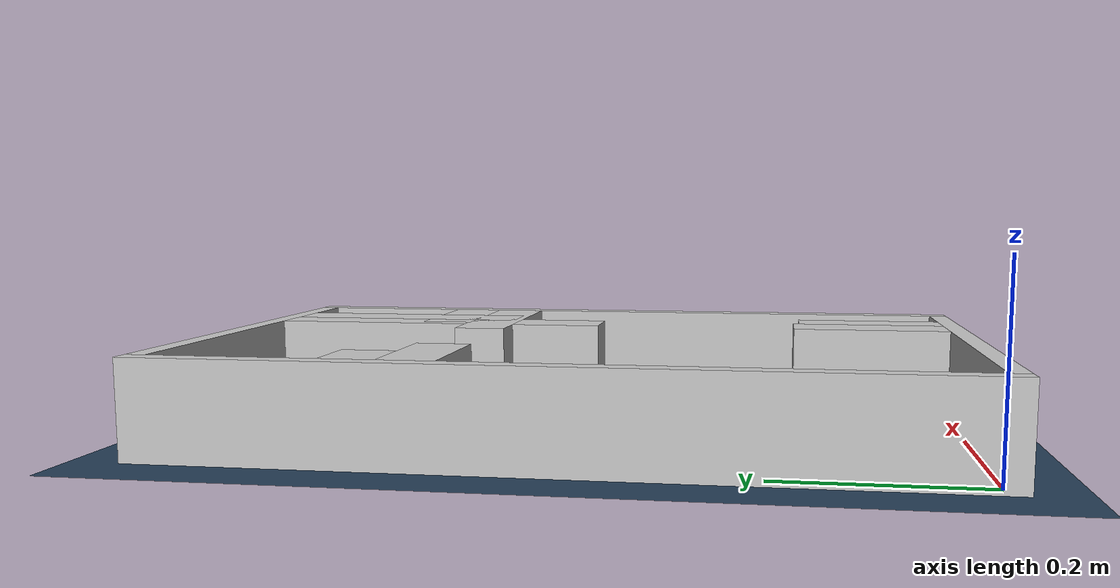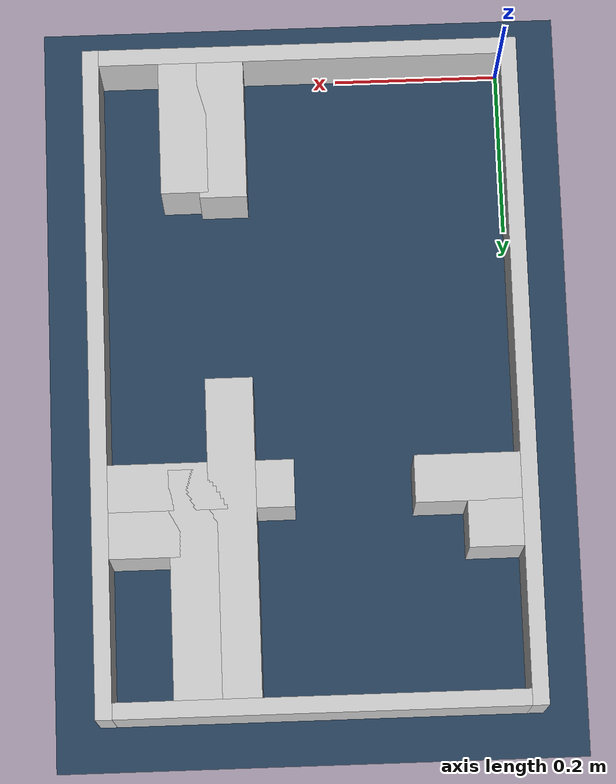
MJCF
<?xml version="1.0" ?>
<mujoco model="generated_real_template">
  <compiler angle="degree"/>
  <option timestep="0.002" integrator="implicitfast" iterations="100" cone="elliptic"/>
  <default>
    <geom density="1"/>
  </default>
  <asset>
    <texture builtin="gradient" height="3072" rgb1="0.3 0.5 0.7" rgb2="0 0 0" type="skybox" width="512"/>
    <texture builtin="checker" height="300" mark="edge" markrgb="0.8 0.8 0.8" name="groundplane" rgb1="0.2 0.3 0.4" rgb2="0.1 0.2 0.3" type="2d" width="300"/>
    <material name="groundplane" reflectance="0.2" texrepeat="5 5" texture="groundplane" texuniform="true"/>
  </asset>
  <worldbody>
    <light dir="0 0 -1" directional="true" pos="0 0 1.5"/>
    <geom name="floor" type="plane" condim="4" friction="0.5 0.005 0.001" material="groundplane" size="0 0 0.05"/>
    <body name="walls">
      <geom name="wall_boundary_left" type="box" condim="4" friction="1.0 0.005 0.0001" rgba="0.8 0.8 0.8 1" pos="-0.010000 0.387500 0.050000" euler="0 0 0.000000" size="0.010000 0.407500 0.050000"/>
      <geom name="wall_boundary_right" type="box" condim="4" friction="1.0 0.005 0.0001" rgba="0.8 0.8 0.8 1" pos="0.500000 0.387500 0.050000" euler="0 0 0.000000" size="0.010000 0.407500 0.050000"/>
      <geom name="wall_boundary_bottom" type="box" condim="4" friction="1.0 0.005 0.0001" rgba="0.8 0.8 0.8 1" pos="0.245000 -0.010000 0.050000" euler="0 0 0.000000" size="0.245000 0.010000 0.050000"/>
      <geom name="wall_boundary_top" type="box" condim="4" friction="1.0 0.005 0.0001" rgba="0.8 0.8 0.8 1" pos="0.245000 0.785000 0.050000" euler="0 0 0.000000" size="0.245000 0.010000 0.050000"/>
      <geom name="wall_inner_1_1" type="box" condim="4" friction="1.0 0.005 0.0001" rgba="0.8 0.8 0.8 1" pos="0.342705 0.085175 0.050000" euler="0 0 90.000000" size="0.085175 0.028500 0.050000"/>
      <geom name="wall_inner_1_2" type="box" condim="4" friction="1.0 0.005 0.0001" rgba="0.8 0.8 0.8 1" pos="0.342705 0.584117 0.050000" euler="0 0 90.000000" size="0.190883 0.028500 0.050000"/>
      <geom name="wall_inner_2_1" type="box" condim="4" friction="1.0 0.005 0.0001" rgba="0.8 0.8 0.8 1" pos="0.032516 0.578187 0.050000" euler="0 0 0.000000" size="0.032516 0.028500 0.050000"/>
      <geom name="wall_inner_2_2" type="box" condim="4" friction="1.0 0.005 0.0001" rgba="0.8 0.8 0.8 1" pos="0.411729 0.578187 0.050000" euler="0 0 0.000000" size="0.078271 0.028500 0.050000"/>
      <geom name="wall_inner_3_1" type="box" condim="4" friction="1.0 0.005 0.0001" rgba="0.8 0.8 0.8 1" pos="0.389377 0.081674 0.050000" euler="0 0 90.000000" size="0.081674 0.028500 0.050000"/>
      <geom name="wall_inner_3_2" type="box" condim="4" friction="1.0 0.005 0.0001" rgba="0.8 0.8 0.8 1" pos="0.389377 0.638757 0.050000" euler="0 0 90.000000" size="0.136243 0.028500 0.050000"/>
      <geom name="wall_inner_4_1" type="box" condim="4" friction="1.0 0.005 0.0001" rgba="0.8 0.8 0.8 1" pos="0.063162 0.522646 0.050000" euler="0 0 0.000000" size="0.063162 0.028500 0.050000"/>
      <geom name="wall_inner_4_2" type="box" condim="4" friction="1.0 0.005 0.0001" rgba="0.8 0.8 0.8 1" pos="0.379277 0.522646 0.050000" euler="0 0 0.000000" size="0.110723 0.028500 0.050000"/>
    </body>
  </worldbody>
</mujoco>
